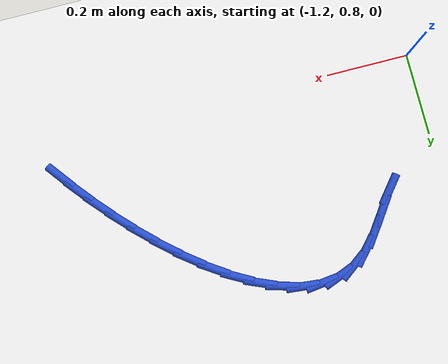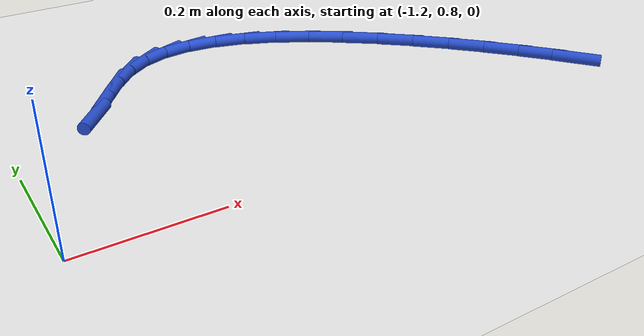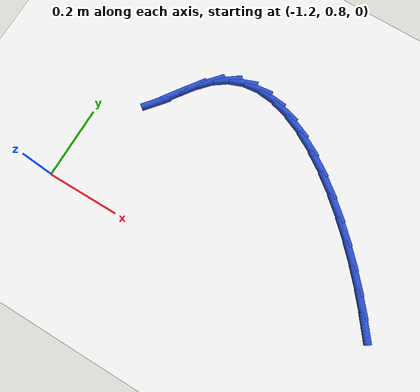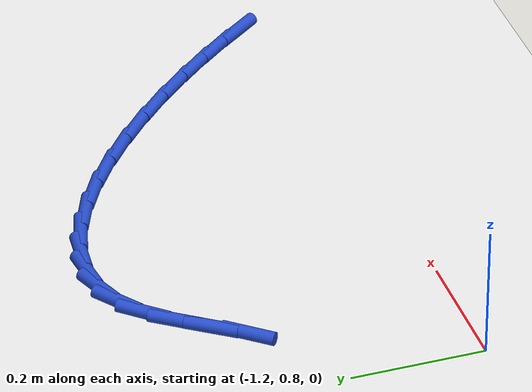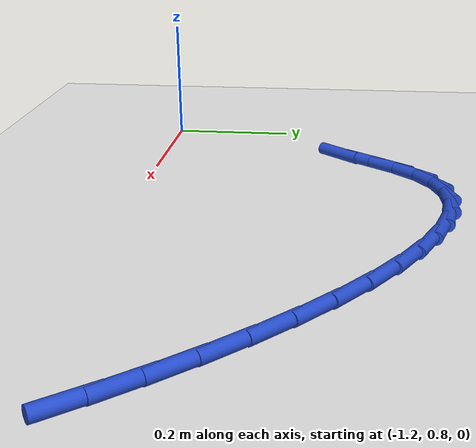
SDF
<sdf version="1.6">
 <world name="default">
  <model name="ground_plane">
   <static>1</static>
   <link name="link">
    <collision name="collision">
     <geometry><plane><normal>0 0 1</normal><size>100 100</size></plane></geometry>
     <surface><friction><ode><mu>100</mu><mu2>50</mu2></ode></friction></surface>
    </collision>
    <visual name="visual">
     <cast_shadows>0</cast_shadows>
     <geometry><plane><normal>0 0 1</normal><size>100 100</size></plane></geometry>
     <material>
      <script><uri>file://media/materials/scripts/gazebo.material</uri><name>Gazebo/WhiteGlow</name></script>
     </material>
    </visual>
   </link>
  </model>
  <model name="line">
   <link name="link_19">
    <pose>-0.3159651043415732 0.8783414311727967 0.01 0 1.57 -0.9145313985060138</pose>
    <collision name="collision">
     <geometry><cylinder><radius>0.01</radius><length>0.08</length></cylinder></geometry>
    </collision>
    <visual name="visual">
     <material>
      <script><name>Gazebo/Blue</name><uri>file://media/materials/scripts/gazebo.material</uri></script>
     </material>
     <geometry><cylinder><radius>0.01</radius><length>0.08</length></cylinder></geometry>
    </visual>
   </link>
   <link name="link_20">
    <pose>-0.35064355338792963 0.9233703468452392 0.01 0 1.57 -0.876389377235969</pose>
    <collision name="collision">
     <geometry><cylinder><radius>0.01</radius><length>0.08</length></cylinder></geometry>
    </collision>
    <visual name="visual">
     <material>
      <script><name>Gazebo/Blue</name><uri>file://media/materials/scripts/gazebo.material</uri></script>
     </material>
     <geometry><cylinder><radius>0.01</radius><length>0.08</length></cylinder></geometry>
    </visual>
   </link>
   <link name="link_21">
    <pose>-0.38872498988956394 0.9690988693357738 0.01 0 1.57 -0.8386794349472038</pose>
    <collision name="collision">
     <geometry><cylinder><radius>0.01</radius><length>0.08</length></cylinder></geometry>
    </collision>
    <visual name="visual">
     <material>
      <script><name>Gazebo/Blue</name><uri>file://media/materials/scripts/gazebo.material</uri></script>
     </material>
     <geometry><cylinder><radius>0.01</radius><length>0.08</length></cylinder></geometry>
    </visual>
   </link>
   <link name="link_22">
    <pose>-0.43001997770106415 1.0150466674958782 0.01 0 1.57 -0.7994188052191216</pose>
    <collision name="collision">
     <geometry><cylinder><radius>0.01</radius><length>0.08</length></cylinder></geometry>
    </collision>
    <visual name="visual">
     <material>
      <script><name>Gazebo/Blue</name><uri>file://media/materials/scripts/gazebo.material</uri></script>
     </material>
     <geometry><cylinder><radius>0.01</radius><length>0.08</length></cylinder></geometry>
    </visual>
   </link>
   <link name="link_23">
    <pose>-0.4739804719015362 1.0602574826148556 0.01 0 1.57 -0.7567828916099218</pose>
    <collision name="collision">
     <geometry><cylinder><radius>0.01</radius><length>0.08</length></cylinder></geometry>
    </collision>
    <visual name="visual">
     <material>
      <script><name>Gazebo/Blue</name><uri>file://media/materials/scripts/gazebo.material</uri></script>
     </material>
     <geometry><cylinder><radius>0.01</radius><length>0.08</length></cylinder></geometry>
    </visual>
   </link>
   <link name="link_24">
    <pose>-0.520047969124187 1.1037611760576984 0.01 0 1.57 -0.7087802669123512</pose>
    <collision name="collision">
     <geometry><cylinder><radius>0.01</radius><length>0.08</length></cylinder></geometry>
    </collision>
    <visual name="visual">
     <material>
      <script><name>Gazebo/Blue</name><uri>file://media/materials/scripts/gazebo.material</uri></script>
     </material>
     <geometry><cylinder><radius>0.01</radius><length>0.08</length></cylinder></geometry>
    </visual>
   </link>
   <link name="link_25">
    <pose>-0.5676639660022248 1.1445876091894003 0.01 0 1.57 -0.6529731325342216</pose>
    <collision name="collision">
     <geometry><cylinder><radius>0.01</radius><length>0.08</length></cylinder></geometry>
    </collision>
    <visual name="visual">
     <material>
      <script><name>Gazebo/Blue</name><uri>file://media/materials/scripts/gazebo.material</uri></script>
     </material>
     <geometry><cylinder><radius>0.01</radius><length>0.08</length></cylinder></geometry>
    </visual>
   </link>
   <link name="link_26">
    <pose>-0.6162699591688562 1.1817666433749532 0.01 0 1.57 -0.5861627510612983</pose>
    <collision name="collision">
     <geometry><cylinder><radius>0.01</radius><length>0.08</length></cylinder></geometry>
    </collision>
    <visual name="visual">
     <material>
      <script><name>Gazebo/Blue</name><uri>file://media/materials/scripts/gazebo.material</uri></script>
     </material>
     <geometry><cylinder><radius>0.01</radius><length>0.08</length></cylinder></geometry>
    </visual>
   </link>
   <link name="link_27">
    <pose>-0.6653074452572895 1.2143281399793517 0.01 0 1.57 -0.5039893011024552</pose>
    <collision name="collision">
     <geometry><cylinder><radius>0.01</radius><length>0.08</length></cylinder></geometry>
    </collision>
    <visual name="visual">
     <material>
      <script><name>Gazebo/Blue</name><uri>file://media/materials/scripts/gazebo.material</uri></script>
     </material>
     <geometry><cylinder><radius>0.01</radius><length>0.08</length></cylinder></geometry>
    </visual>
   </link>
   <link name="link_28">
    <pose>-0.7142179209007314 1.2413019603675877 0.01 0 1.57 -0.4004716892429692</pose>
    <collision name="collision">
     <geometry><cylinder><radius>0.01</radius><length>0.08</length></cylinder></geometry>
    </collision>
    <visual name="visual">
     <material>
      <script><name>Gazebo/Blue</name><uri>file://media/materials/scripts/gazebo.material</uri></script>
     </material>
     <geometry><cylinder><radius>0.01</radius><length>0.08</length></cylinder></geometry>
    </visual>
   </link>
   <link name="link_29">
    <pose>-0.7624428827323899 1.2617179659046545 0.01 0 1.57 -0.26773864782263546</pose>
    <collision name="collision">
     <geometry><cylinder><radius>0.01</radius><length>0.08</length></cylinder></geometry>
    </collision>
    <visual name="visual">
     <material>
      <script><name>Gazebo/Blue</name><uri>file://media/materials/scripts/gazebo.material</uri></script>
     </material>
     <geometry><cylinder><radius>0.01</radius><length>0.08</length></cylinder></geometry>
    </visual>
   </link>
   <link name="link_30">
    <pose>-0.8094238273854722 1.2746060179555454 0.01 0 1.57 -0.09686529040320005</pose>
    <collision name="collision">
     <geometry><cylinder><radius>0.01</radius><length>0.08</length></cylinder></geometry>
    </collision>
    <visual name="visual">
     <material>
      <script><name>Gazebo/Blue</name><uri>file://media/materials/scripts/gazebo.material</uri></script>
     </material>
     <geometry><cylinder><radius>0.01</radius><length>0.08</length></cylinder></geometry>
    </visual>
   </link>
   <link name="link_31">
    <pose>-0.854602251493186 1.278995977885253 0.01 0 1.57 0.11805150080588234</pose>
    <collision name="collision">
     <geometry><cylinder><radius>0.01</radius><length>0.08</length></cylinder></geometry>
    </collision>
    <visual name="visual">
     <material>
      <script><name>Gazebo/Blue</name><uri>file://media/materials/scripts/gazebo.material</uri></script>
     </material>
     <geometry><cylinder><radius>0.01</radius><length>0.08</length></cylinder></geometry>
    </visual>
   </link>
   <link name="link_32">
    <pose>-0.8974196516887383 1.273917707058771 0.01 0 1.57 0.3709087221486461</pose>
    <collision name="collision">
     <geometry><cylinder><radius>0.01</radius><length>0.08</length></cylinder></geometry>
    </collision>
    <visual name="visual">
     <material>
      <script><name>Gazebo/Blue</name><uri>file://media/materials/scripts/gazebo.material</uri></script>
     </material>
     <geometry><cylinder><radius>0.01</radius><length>0.08</length></cylinder></geometry>
    </visual>
   </link>
   <link name="link_33">
    <pose>-0.9373175246053365 1.2584010668410917 0.01 0 1.57 0.6364861758430974</pose>
    <collision name="collision">
     <geometry><cylinder><radius>0.01</radius><length>0.08</length></cylinder></geometry>
    </collision>
    <visual name="visual">
     <material>
      <script><name>Gazebo/Blue</name><uri>file://media/materials/scripts/gazebo.material</uri></script>
     </material>
     <geometry><cylinder><radius>0.01</radius><length>0.08</length></cylinder></geometry>
    </visual>
   </link>
   <link name="link_34">
    <pose>-0.9737394846749473 1.2314817289238185 0.01 0 1.57 0.8505760748625117</pose>
    <collision name="collision">
     <geometry><cylinder><radius>0.01</radius><length>0.08</length></cylinder></geometry>
    </collision>
    <visual name="visual">
     <material>
      <script><name>Gazebo/Blue</name><uri>file://media/materials/scripts/gazebo.material</uri></script>
     </material>
     <geometry><cylinder><radius>0.01</radius><length>0.08</length></cylinder></geometry>
    </visual>
   </link>
   <link name="link_35">
    <pose>-1.006740310337946 1.1938721355073316 0.01 0 1.57 0.9513793097877986</pose>
    <collision name="collision">
     <geometry><cylinder><radius>0.01</radius><length>0.08</length></cylinder></geometry>
    </collision>
    <visual name="visual">
     <material>
      <script><name>Gazebo/Blue</name><uri>file://media/materials/scripts/gazebo.material</uri></script>
     </material>
     <geometry><cylinder><radius>0.01</radius><length>0.08</length></cylinder></geometry>
    </visual>
   </link>
   <link name="link_36">
    <pose>-1.0378282265763445 1.1502723593847102 0.01 0 1.57 0.9619257183664889</pose>
    <collision name="collision">
     <geometry><cylinder><radius>0.01</radius><length>0.08</length></cylinder></geometry>
    </collision>
    <visual name="visual">
     <material>
      <script><name>Gazebo/Blue</name><uri>file://media/materials/scripts/gazebo.material</uri></script>
     </material>
     <geometry><cylinder><radius>0.01</radius><length>0.08</length></cylinder></geometry>
    </visual>
   </link>
   <link name="link_37">
    <pose>-1.0687228446479429 1.1059624261412893 0.01 0 1.57 0.8864803135045498</pose>
    <collision name="collision">
     <geometry><cylinder><radius>0.01</radius><length>0.08</length></cylinder></geometry>
    </collision>
    <visual name="visual">
     <material>
      <script><name>Gazebo/Blue</name><uri>file://media/materials/scripts/gazebo.material</uri></script>
     </material>
     <geometry><cylinder><radius>0.01</radius><length>0.08</length></cylinder></geometry>
    </visual>
   </link>
  </model>
 </world>
</sdf>
